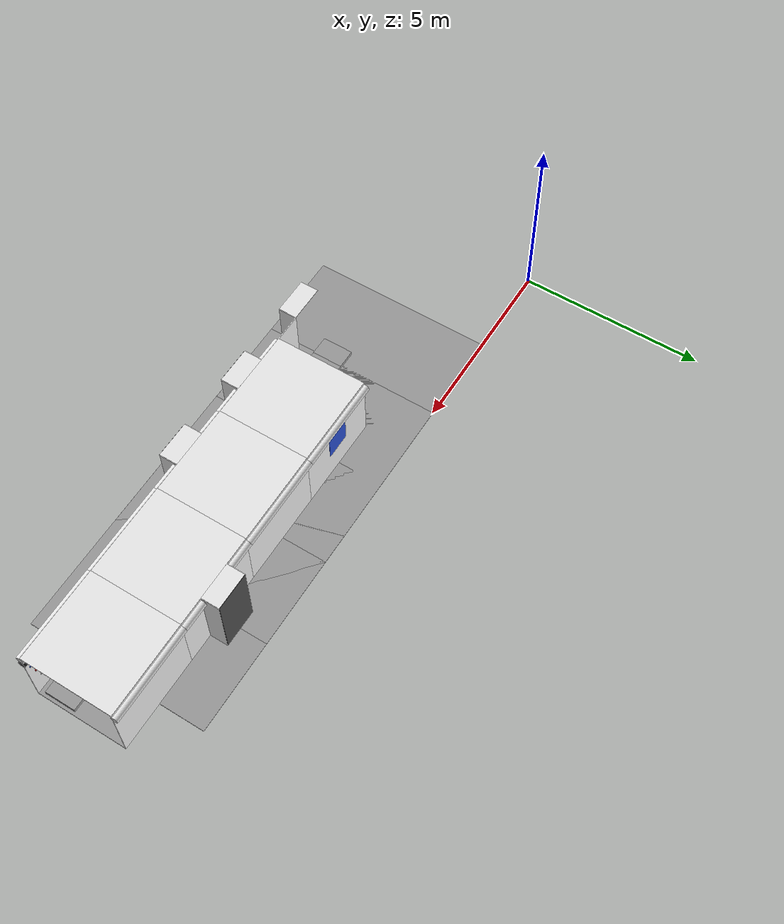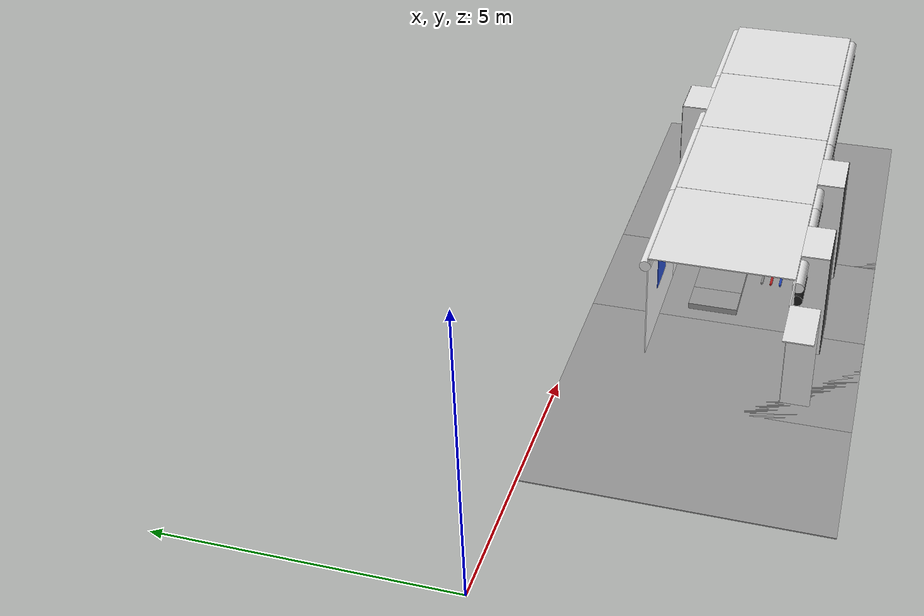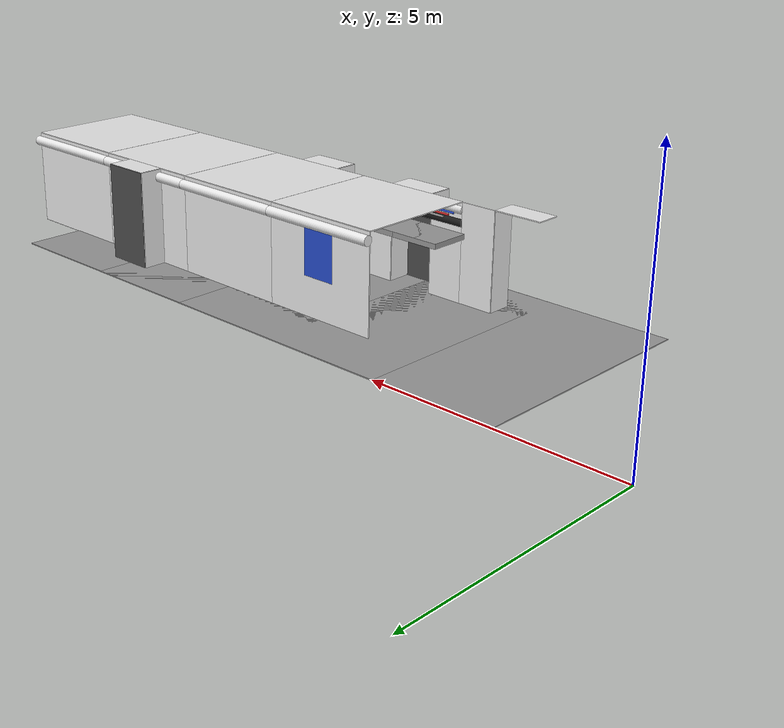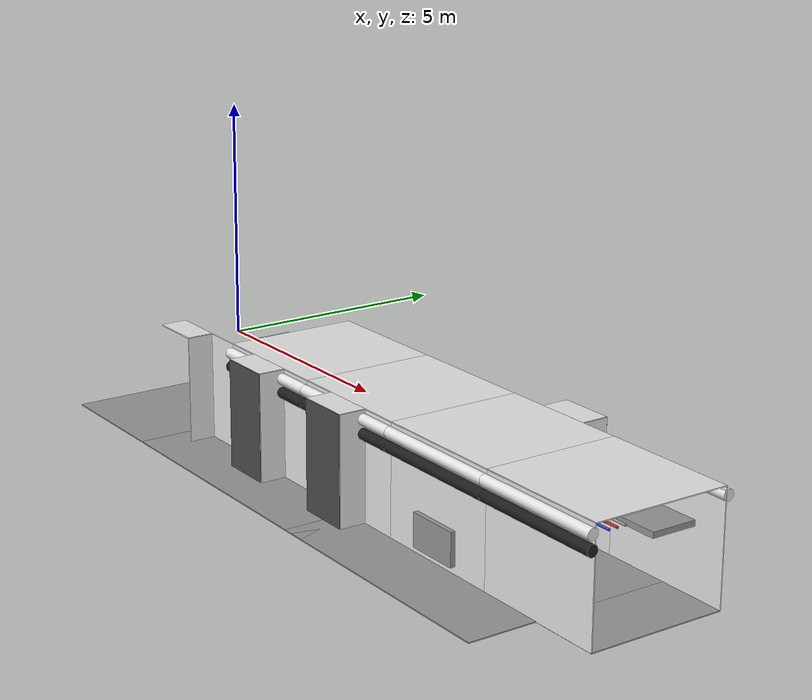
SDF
<sdf version="1.6">
 <world name="default">
  <model name="ceiling_1_2_-1_2_1">
   <pose>6.0 -2.5 1.7 0.0 0.0 -1.57</pose>
   <link name="link_1">
    <visual name="visual">
     <geometry><box><size>0.8 1 0.1</size></box></geometry>
     <material>
      <script><uri>file://media/materials/scripts/gazebo.material</uri><name>Gazebo/Grey</name></script>
     </material>
    </visual>
    <collision name="collision"><geometry><box><size>0.8 1 0.1</size></box></geometry></collision>
   </link>
   <static>1</static>
  </model>
  <model name="wall_right_front_left_2_-1_0_1">
   <static>1</static>
   <pose>5.875 -3.75 1.0 0.0 0.0 0.0</pose>
   <link name="link">
    <collision name="collision"><geometry><box><size>0.75 0.02 2.0</size></box></geometry></collision>
    <visual name="visual">
     <material>
      <script><name>Gazebo/White</name><uri>file://media/materials/scripts/gazebo.material</uri></script>
     </material>
     <geometry><box><size>0.75 0.02 2.0</size></box></geometry>
    </visual>
   </link>
  </model>
  <model name="wall_right_inside_left_2_-1_0_1">
   <static>1</static>
   <pose>5.5 -4.0 1.0 0.0 0.0 -1.57</pose>
   <link name="link">
    <collision name="collision"><geometry><box><size>0.5 0.02 2</size></box></geometry></collision>
    <visual name="visual">
     <material>
      <script><name>Gazebo/White</name><uri>file://media/materials/scripts/gazebo.material</uri></script>
     </material>
     <geometry><box><size>0.5 0.02 2</size></box></geometry>
    </visual>
   </link>
  </model>
  <model name="wall_right_inside_top_2_-1_0_1">
   <static>1</static>
   <pose>5.0 -4.0 2.0 1.57 0.0 0.0</pose>
   <link name="link">
    <collision name="collision"><geometry><box><size>1 0.02 0.5</size></box></geometry></collision>
    <visual name="visual">
     <material>
      <script><name>Gazebo/White</name><uri>file://media/materials/scripts/gazebo.material</uri></script>
     </material>
     <geometry><box><size>1 0.02 0.5</size></box></geometry>
    </visual>
   </link>
  </model>
  <model name="wall_bottom_2_-1_0_1">
   <static>1</static>
   <pose>5.0 -2.5 0.0 0.0 0.0 -1.57</pose>
   <link name="link">
    <collision name="collision"><geometry><box><size>5.0 5.0 0.02</size></box></geometry></collision>
    <visual name="visual">
     <material>
      <script><name>Gazebo/Grey</name><uri>file://media/materials/scripts/gazebo.material</uri></script>
     </material>
     <geometry><box><size>5.0 5.0 0.02</size></box></geometry>
    </visual>
   </link>
  </model>
  <model name="wall_left_3_-1_0_1">
   <static>1</static>
   <pose>7.5 -1.25 1.0 0.0 0.0 0.0</pose>
   <link name="link">
    <collision name="collision"><geometry><box><size>2.5 0.02 2.0</size></box></geometry></collision>
    <visual name="visual">
     <material>
      <script><name>Gazebo/White</name><uri>file://media/materials/scripts/gazebo.material</uri></script>
     </material>
     <geometry><box><size>2.5 0.02 2.0</size></box></geometry>
    </visual>
   </link>
  </model>
  <model name="wall_top_3_-1_0_1">
   <static>1</static>
   <pose>7.5 -2.5 2.0 1.57 0.0 -1.57</pose>
   <link name="link">
    <collision name="collision"><geometry><box><size>2.5 0.02 2.5</size></box></geometry></collision>
    <visual name="visual">
     <material>
      <script><name>Gazebo/White</name><uri>file://media/materials/scripts/gazebo.material</uri></script>
     </material>
     <geometry><box><size>2.5 0.02 2.5</size></box></geometry>
    </visual>
   </link>
  </model>
  <model name="ceiling_1_3_-1_0_1">
   <pose>7.5 -2.5 1.7 0.0 0.0 -1.57</pose>
   <link name="link_1">
    <visual name="visual">
     <geometry><box><size>0.8 1 0.1</size></box></geometry>
     <material>
      <script><uri>file://media/materials/scripts/gazebo.material</uri><name>Gazebo/Grey</name></script>
     </material>
    </visual>
    <collision name="collision"><geometry><box><size>0.8 1 0.1</size></box></geometry></collision>
   </link>
   <static>1</static>
  </model>
  <model name="ceiling_1_3_-1_1_1">
   <pose>6.5 -2.5 1.7 0.0 0.0 -1.57</pose>
   <link name="link_1">
    <visual name="visual">
     <geometry><box><size>0.8 1 0.1</size></box></geometry>
     <material>
      <script><uri>file://media/materials/scripts/gazebo.material</uri><name>Gazebo/Grey</name></script>
     </material>
    </visual>
    <collision name="collision"><geometry><box><size>0.8 1 0.1</size></box></geometry></collision>
   </link>
   <static>1</static>
  </model>
  <model name="ceiling_1_3_-1_2_1">
   <pose>8.5 -2.5 1.7 0.0 0.0 -1.57</pose>
   <link name="link_1">
    <visual name="visual">
     <geometry><box><size>0.8 1 0.1</size></box></geometry>
     <material>
      <script><uri>file://media/materials/scripts/gazebo.material</uri><name>Gazebo/Grey</name></script>
     </material>
    </visual>
    <collision name="collision"><geometry><box><size>0.8 1 0.1</size></box></geometry></collision>
   </link>
   <static>1</static>
  </model>
  <model name="white_pipe_left_3_-1_0_1">
   <static>1</static>
   <pose>7.5 -2.5 1.84 0.0 0.0 -1.57</pose>
   <link name="link_0">
    <visual name="visual">
     <pose>-1.3 0 0 1.57 0 0</pose>
     <geometry><cylinder><radius>0.1</radius><length>2.5</length></cylinder></geometry>
     <material>
      <script><uri>file://media/materials/scripts/gazebo.material</uri><name>Gazebo/White</name></script>
     </material>
    </visual>
    <collision name="collision">
     <pose>-1.3 0 0 1.57 0 0</pose>
     <geometry><cylinder><radius>0.1</radius><length>2.5</length></cylinder></geometry>
    </collision>
   </link>
  </model>
  <model name="white_pipe_right_3_-1_0_1">
   <static>1</static>
   <pose>7.5 -2.5 1.84 0.0 0.0 -1.57</pose>
   <link name="link_0">
    <visual name="visual">
     <pose>1.3 0 0 1.57 0 0</pose>
     <geometry><cylinder><radius>0.1</radius><length>2.5</length></cylinder></geometry>
     <material>
      <script><uri>file://media/materials/scripts/gazebo.material</uri><name>Gazebo/White</name></script>
     </material>
    </visual>
    <collision name="collision">
     <pose>1.3 0 0 1.57 0 0</pose>
     <geometry><cylinder><radius>0.1</radius><length>2.5</length></cylinder></geometry>
    </collision>
   </link>
  </model>
  <model name="black_pipe_right_3_-1_0_1">
   <static>1</static>
   <pose>7.5 -2.5 1.84 0.0 0.0 -1.57</pose>
   <link name="link_0">
    <visual name="visual">
     <pose>1.3 0 -0.25 1.57 0 0</pose>
     <geometry><cylinder><radius>0.1</radius><length>2.5</length></cylinder></geometry>
     <material>
      <script><uri>file://media/materials/scripts/gazebo.material</uri><name>Gazebo/Black</name></script>
     </material>
    </visual>
    <collision name="collision">
     <pose>1.3 0 -0.25 1.57 0 0</pose>
     <geometry><cylinder><radius>0.1</radius><length>2.5</length></cylinder></geometry>
    </collision>
   </link>
  </model>
  <model name="grey_pipe_right_3_-1_0_1">
   <static>1</static>
   <pose>7.5 -2.5 1.84 0.0 0.0 -1.57</pose>
   <link name="link_0">
    <visual name="visual">
     <pose>0.7 0 0 1.57 0 0</pose>
     <geometry><cylinder><radius>0.02</radius><length>2.5</length></cylinder></geometry>
     <material>
      <script><uri>file://media/materials/scripts/gazebo.material</uri><name>Gazebo/Grey</name></script>
     </material>
    </visual>
    <collision name="collision">
     <pose>0.7 0 0 1.57 0 0</pose>
     <geometry><cylinder><radius>0.02</radius><length>2.5</length></cylinder></geometry>
    </collision>
   </link>
  </model>
  <model name="red_pipe_right_3_-1_0_1">
   <static>1</static>
   <pose>7.5 -2.5 1.84 0.0 0.0 -1.57</pose>
   <link name="link_0">
    <visual name="visual">
     <pose>0.85 0 0 1.57 0 0</pose>
     <geometry><cylinder><radius>0.02</radius><length>2.5</length></cylinder></geometry>
     <material>
      <script><uri>file://media/materials/scripts/gazebo.material</uri><name>Gazebo/Red</name></script>
     </material>
    </visual>
    <collision name="collision">
     <pose>0.85 0 0 1.57 0 0</pose>
     <geometry><cylinder><radius>0.02</radius><length>2.5</length></cylinder></geometry>
    </collision>
   </link>
  </model>
  <model name="blue_pipe_right_3_-1_0_1">
   <static>1</static>
   <pose>7.5 -2.5 1.84 0.0 0.0 -1.57</pose>
   <link name="link_0">
    <visual name="visual">
     <pose>1 0 0 1.57 0 0</pose>
     <geometry><cylinder><radius>0.02</radius><length>2.5</length></cylinder></geometry>
     <material>
      <script><uri>file://media/materials/scripts/gazebo.material</uri><name>Gazebo/Blue</name></script>
     </material>
    </visual>
    <collision name="collision">
     <pose>1 0 0 1.57 0 0</pose>
     <geometry><cylinder><radius>0.02</radius><length>2.5</length></cylinder></geometry>
    </collision>
   </link>
  </model>
  <model name="panel_3_-1_0_1">
   <static>1</static>
   <pose>7.5 -1.25 1.3 0.0 0.0 -1.57</pose>
   <link name="link">
    <collision name="collision"><geometry><box><size>0.04 0.7 1</size></box></geometry></collision>
    <visual name="visual">
     <material>
      <script><name>Gazebo/Blue</name><uri>file://media/materials/scripts/gazebo.material</uri></script>
     </material>
     <geometry><box><size>0.04 0.7 1</size></box></geometry>
    </visual>
   </link>
  </model>
  <model name="wall_right_front_left_3_-1_0_1">
   <static>1</static>
   <pose>8.375 -3.75 1.0 0.0 0.0 0.0</pose>
   <link name="link">
    <collision name="collision"><geometry><box><size>0.75 0.02 2.0</size></box></geometry></collision>
    <visual name="visual">
     <material>
      <script><name>Gazebo/White</name><uri>file://media/materials/scripts/gazebo.material</uri></script>
     </material>
     <geometry><box><size>0.75 0.02 2.0</size></box></geometry>
    </visual>
   </link>
  </model>
  <model name="wall_right_front_right_3_-1_0_1">
   <static>1</static>
   <pose>6.625 -3.75 1.0 0.0 0.0 0.0</pose>
   <link name="link">
    <collision name="collision"><geometry><box><size>0.75 0.02 2.0</size></box></geometry></collision>
    <visual name="visual">
     <material>
      <script><name>Gazebo/White</name><uri>file://media/materials/scripts/gazebo.material</uri></script>
     </material>
     <geometry><box><size>0.75 0.02 2.0</size></box></geometry>
    </visual>
   </link>
  </model>
  <model name="wall_right_front_up_3_-1_0_1">
   <static>1</static>
   <pose>7.5 -3.75 2.0 0.0 0.0 0.0</pose>
   <link name="link">
    <collision name="collision"><geometry><box><size>1.0 0.02 0.001</size></box></geometry></collision>
    <visual name="visual">
     <material>
      <script><name>Gazebo/White</name><uri>file://media/materials/scripts/gazebo.material</uri></script>
     </material>
     <geometry><box><size>1.0 0.02 0.001</size></box></geometry>
    </visual>
   </link>
  </model>
  <model name="wall_right_inside_back_3_-1_0_1">
   <static>1</static>
   <pose>7.5 -4.25 1.0 0.0 0.0 0.0</pose>
   <link name="link">
    <collision name="collision"><geometry><box><size>1 0.02 2</size></box></geometry></collision>
    <visual name="visual">
     <material>
      <script><name>Gazebo/DarkGrey</name><uri>file://media/materials/scripts/gazebo.material</uri></script>
     </material>
     <geometry><box><size>1 0.02 2</size></box></geometry>
    </visual>
   </link>
  </model>
  <model name="wall_right_inside_left_3_-1_0_1">
   <static>1</static>
   <pose>8.0 -4.0 1.0 0.0 0.0 -1.57</pose>
   <link name="link">
    <collision name="collision"><geometry><box><size>0.5 0.02 2</size></box></geometry></collision>
    <visual name="visual">
     <material>
      <script><name>Gazebo/White</name><uri>file://media/materials/scripts/gazebo.material</uri></script>
     </material>
     <geometry><box><size>0.5 0.02 2</size></box></geometry>
    </visual>
   </link>
  </model>
  <model name="wall_right_inside_right_3_-1_0_1">
   <static>1</static>
   <pose>7.0 -4.0 1.0 0.0 0.0 -1.57</pose>
   <link name="link">
    <collision name="collision"><geometry><box><size>0.5 0.02 2</size></box></geometry></collision>
    <visual name="visual">
     <material>
      <script><name>Gazebo/White</name><uri>file://media/materials/scripts/gazebo.material</uri></script>
     </material>
     <geometry><box><size>0.5 0.02 2</size></box></geometry>
    </visual>
   </link>
  </model>
  <model name="wall_right_inside_top_3_-1_0_1">
   <static>1</static>
   <pose>7.5 -4.0 2.0 1.57 0.0 0.0</pose>
   <link name="link">
    <collision name="collision"><geometry><box><size>1 0.02 0.5</size></box></geometry></collision>
    <visual name="visual">
     <material>
      <script><name>Gazebo/White</name><uri>file://media/materials/scripts/gazebo.material</uri></script>
     </material>
     <geometry><box><size>1 0.02 0.5</size></box></geometry>
    </visual>
   </link>
  </model>
  <model name="wall_bottom_3_-1_0_1">
   <static>1</static>
   <pose>7.5 -2.5 0.0 0.0 0.0 -1.57</pose>
   <link name="link">
    <collision name="collision"><geometry><box><size>5.0 5.0 0.02</size></box></geometry></collision>
    <visual name="visual">
     <material>
      <script><name>Gazebo/Grey</name><uri>file://media/materials/scripts/gazebo.material</uri></script>
     </material>
     <geometry><box><size>5.0 5.0 0.02</size></box></geometry>
    </visual>
   </link>
  </model>
  <model name="wall_left_4_-1_0_1">
   <static>1</static>
   <pose>10.0 -1.25 1.0 0.0 0.0 0.0</pose>
   <link name="link">
    <collision name="collision"><geometry><box><size>2.5 0.02 2.0</size></box></geometry></collision>
    <visual name="visual">
     <material>
      <script><name>Gazebo/White</name><uri>file://media/materials/scripts/gazebo.material</uri></script>
     </material>
     <geometry><box><size>2.5 0.02 2.0</size></box></geometry>
    </visual>
   </link>
  </model>
  <model name="wall_top_4_-1_0_1">
   <static>1</static>
   <pose>10.0 -2.5 2.0 1.57 0.0 -1.57</pose>
   <link name="link">
    <collision name="collision"><geometry><box><size>2.5 0.02 2.5</size></box></geometry></collision>
    <visual name="visual">
     <material>
      <script><name>Gazebo/White</name><uri>file://media/materials/scripts/gazebo.material</uri></script>
     </material>
     <geometry><box><size>2.5 0.02 2.5</size></box></geometry>
    </visual>
   </link>
  </model>
  <model name="ceiling_1_4_-1_0_1">
   <pose>10.0 -2.5 1.7 0.0 0.0 -1.57</pose>
   <link name="link_1">
    <visual name="visual">
     <geometry><box><size>0.8 1 0.1</size></box></geometry>
     <material>
      <script><uri>file://media/materials/scripts/gazebo.material</uri><name>Gazebo/Grey</name></script>
     </material>
    </visual>
    <collision name="collision"><geometry><box><size>0.8 1 0.1</size></box></geometry></collision>
   </link>
   <static>1</static>
  </model>
  <model name="ceiling_1_4_-1_1_1">
   <pose>9.0 -2.5 1.7 0.0 0.0 -1.57</pose>
   <link name="link_1">
    <visual name="visual">
     <geometry><box><size>0.8 1 0.1</size></box></geometry>
     <material>
      <script><uri>file://media/materials/scripts/gazebo.material</uri><name>Gazebo/Grey</name></script>
     </material>
    </visual>
    <collision name="collision"><geometry><box><size>0.8 1 0.1</size></box></geometry></collision>
   </link>
   <static>1</static>
  </model>
  <model name="ceiling_1_4_-1_2_1">
   <pose>11.0 -2.5 1.7 0.0 0.0 -1.57</pose>
   <link name="link_1">
    <visual name="visual">
     <geometry><box><size>0.8 1 0.1</size></box></geometry>
     <material>
      <script><uri>file://media/materials/scripts/gazebo.material</uri><name>Gazebo/Grey</name></script>
     </material>
    </visual>
    <collision name="collision"><geometry><box><size>0.8 1 0.1</size></box></geometry></collision>
   </link>
   <static>1</static>
  </model>
  <model name="white_pipe_left_4_-1_0_1">
   <static>1</static>
   <pose>10.0 -2.5 1.84 0.0 0.0 -1.57</pose>
   <link name="link_0">
    <visual name="visual">
     <pose>-1.3 0 0 1.57 0 0</pose>
     <geometry><cylinder><radius>0.1</radius><length>2.5</length></cylinder></geometry>
     <material>
      <script><uri>file://media/materials/scripts/gazebo.material</uri><name>Gazebo/White</name></script>
     </material>
    </visual>
    <collision name="collision">
     <pose>-1.3 0 0 1.57 0 0</pose>
     <geometry><cylinder><radius>0.1</radius><length>2.5</length></cylinder></geometry>
    </collision>
   </link>
  </model>
  <model name="white_pipe_right_4_-1_0_1">
   <static>1</static>
   <pose>10.0 -2.5 1.84 0.0 0.0 -1.57</pose>
   <link name="link_0">
    <visual name="visual">
     <pose>1.3 0 0 1.57 0 0</pose>
     <geometry><cylinder><radius>0.1</radius><length>2.5</length></cylinder></geometry>
     <material>
      <script><uri>file://media/materials/scripts/gazebo.material</uri><name>Gazebo/White</name></script>
     </material>
    </visual>
    <collision name="collision">
     <pose>1.3 0 0 1.57 0 0</pose>
     <geometry><cylinder><radius>0.1</radius><length>2.5</length></cylinder></geometry>
    </collision>
   </link>
  </model>
  <model name="black_pipe_right_4_-1_0_1">
   <static>1</static>
   <pose>10.0 -2.5 1.84 0.0 0.0 -1.57</pose>
   <link name="link_0">
    <visual name="visual">
     <pose>1.3 0 -0.25 1.57 0 0</pose>
     <geometry><cylinder><radius>0.1</radius><length>2.5</length></cylinder></geometry>
     <material>
      <script><uri>file://media/materials/scripts/gazebo.material</uri><name>Gazebo/Black</name></script>
     </material>
    </visual>
    <collision name="collision">
     <pose>1.3 0 -0.25 1.57 0 0</pose>
     <geometry><cylinder><radius>0.1</radius><length>2.5</length></cylinder></geometry>
    </collision>
   </link>
  </model>
  <model name="grey_pipe_right_4_-1_0_1">
   <static>1</static>
   <pose>10.0 -2.5 1.84 0.0 0.0 -1.57</pose>
   <link name="link_0">
    <visual name="visual">
     <pose>0.7 0 0 1.57 0 0</pose>
     <geometry><cylinder><radius>0.02</radius><length>2.5</length></cylinder></geometry>
     <material>
      <script><uri>file://media/materials/scripts/gazebo.material</uri><name>Gazebo/Grey</name></script>
     </material>
    </visual>
    <collision name="collision">
     <pose>0.7 0 0 1.57 0 0</pose>
     <geometry><cylinder><radius>0.02</radius><length>2.5</length></cylinder></geometry>
    </collision>
   </link>
  </model>
  <model name="red_pipe_right_4_-1_0_1">
   <static>1</static>
   <pose>10.0 -2.5 1.84 0.0 0.0 -1.57</pose>
   <link name="link_0">
    <visual name="visual">
     <pose>0.85 0 0 1.57 0 0</pose>
     <geometry><cylinder><radius>0.02</radius><length>2.5</length></cylinder></geometry>
     <material>
      <script><uri>file://media/materials/scripts/gazebo.material</uri><name>Gazebo/Red</name></script>
     </material>
    </visual>
    <collision name="collision">
     <pose>0.85 0 0 1.57 0 0</pose>
     <geometry><cylinder><radius>0.02</radius><length>2.5</length></cylinder></geometry>
    </collision>
   </link>
  </model>
  <model name="blue_pipe_right_4_-1_0_1">
   <static>1</static>
   <pose>10.0 -2.5 1.84 0.0 0.0 -1.57</pose>
   <link name="link_0">
    <visual name="visual">
     <pose>1 0 0 1.57 0 0</pose>
     <geometry><cylinder><radius>0.02</radius><length>2.5</length></cylinder></geometry>
     <material>
      <script><uri>file://media/materials/scripts/gazebo.material</uri><name>Gazebo/Blue</name></script>
     </material>
    </visual>
    <collision name="collision">
     <pose>1 0 0 1.57 0 0</pose>
     <geometry><cylinder><radius>0.02</radius><length>2.5</length></cylinder></geometry>
    </collision>
   </link>
  </model>
  <model name="wall_right_front_left_4_-1_0_1">
   <static>1</static>
   <pose>10.875 -3.75 1.0 0.0 0.0 0.0</pose>
   <link name="link">
    <collision name="collision"><geometry><box><size>0.75 0.02 2.0</size></box></geometry></collision>
    <visual name="visual">
     <material>
      <script><name>Gazebo/White</name><uri>file://media/materials/scripts/gazebo.material</uri></script>
     </material>
     <geometry><box><size>0.75 0.02 2.0</size></box></geometry>
    </visual>
   </link>
  </model>
  <model name="wall_right_front_right_4_-1_0_1">
   <static>1</static>
   <pose>9.125 -3.75 1.0 0.0 0.0 0.0</pose>
   <link name="link">
    <collision name="collision"><geometry><box><size>0.75 0.02 2.0</size></box></geometry></collision>
    <visual name="visual">
     <material>
      <script><name>Gazebo/White</name><uri>file://media/materials/scripts/gazebo.material</uri></script>
     </material>
     <geometry><box><size>0.75 0.02 2.0</size></box></geometry>
    </visual>
   </link>
  </model>
  <model name="wall_right_front_up_4_-1_0_1">
   <static>1</static>
   <pose>10.0 -3.75 2.0 0.0 0.0 0.0</pose>
   <link name="link">
    <collision name="collision"><geometry><box><size>1.0 0.02 0.001</size></box></geometry></collision>
    <visual name="visual">
     <material>
      <script><name>Gazebo/White</name><uri>file://media/materials/scripts/gazebo.material</uri></script>
     </material>
     <geometry><box><size>1.0 0.02 0.001</size></box></geometry>
    </visual>
   </link>
  </model>
  <model name="wall_right_inside_back_4_-1_0_1">
   <static>1</static>
   <pose>10.0 -4.25 1.0 0.0 0.0 0.0</pose>
   <link name="link">
    <collision name="collision"><geometry><box><size>1 0.02 2</size></box></geometry></collision>
    <visual name="visual">
     <material>
      <script><name>Gazebo/DarkGrey</name><uri>file://media/materials/scripts/gazebo.material</uri></script>
     </material>
     <geometry><box><size>1 0.02 2</size></box></geometry>
    </visual>
   </link>
  </model>
  <model name="wall_right_inside_left_4_-1_0_1">
   <static>1</static>
   <pose>10.5 -4.0 1.0 0.0 0.0 -1.57</pose>
   <link name="link">
    <collision name="collision"><geometry><box><size>0.5 0.02 2</size></box></geometry></collision>
    <visual name="visual">
     <material>
      <script><name>Gazebo/White</name><uri>file://media/materials/scripts/gazebo.material</uri></script>
     </material>
     <geometry><box><size>0.5 0.02 2</size></box></geometry>
    </visual>
   </link>
  </model>
  <model name="wall_right_inside_right_4_-1_0_1">
   <static>1</static>
   <pose>9.5 -4.0 1.0 0.0 0.0 -1.57</pose>
   <link name="link">
    <collision name="collision"><geometry><box><size>0.5 0.02 2</size></box></geometry></collision>
    <visual name="visual">
     <material>
      <script><name>Gazebo/White</name><uri>file://media/materials/scripts/gazebo.material</uri></script>
     </material>
     <geometry><box><size>0.5 0.02 2</size></box></geometry>
    </visual>
   </link>
  </model>
  <model name="wall_right_inside_top_4_-1_0_1">
   <static>1</static>
   <pose>10.0 -4.0 2.0 1.57 0.0 0.0</pose>
   <link name="link">
    <collision name="collision"><geometry><box><size>1 0.02 0.5</size></box></geometry></collision>
    <visual name="visual">
     <material>
      <script><name>Gazebo/White</name><uri>file://media/materials/scripts/gazebo.material</uri></script>
     </material>
     <geometry><box><size>1 0.02 0.5</size></box></geometry>
    </visual>
   </link>
  </model>
  <model name="wall_bottom_4_-1_0_1">
   <static>1</static>
   <pose>10.0 -2.5 0.0 0.0 0.0 -1.57</pose>
   <link name="link">
    <collision name="collision"><geometry><box><size>5.0 5.0 0.02</size></box></geometry></collision>
    <visual name="visual">
     <material>
      <script><name>Gazebo/Grey</name><uri>file://media/materials/scripts/gazebo.material</uri></script>
     </material>
     <geometry><box><size>5.0 5.0 0.02</size></box></geometry>
    </visual>
   </link>
  </model>
  <model name="wall_right_5_-1_0_1">
   <static>1</static>
   <pose>12.5 -3.75 1.0 0.0 0.0 0.0</pose>
   <link name="link">
    <collision name="collision"><geometry><box><size>2.5 0.02 2.0</size></box></geometry></collision>
    <visual name="visual">
     <material>
      <script><name>Gazebo/White</name><uri>file://media/materials/scripts/gazebo.material</uri></script>
     </material>
     <geometry><box><size>2.5 0.02 2.0</size></box></geometry>
    </visual>
   </link>
  </model>
  <model name="wall_top_5_-1_0_1">
   <static>1</static>
   <pose>12.5 -2.5 2.0 1.57 0.0 -1.57</pose>
   <link name="link">
    <collision name="collision"><geometry><box><size>2.5 0.02 2.5</size></box></geometry></collision>
    <visual name="visual">
     <material>
      <script><name>Gazebo/White</name><uri>file://media/materials/scripts/gazebo.material</uri></script>
     </material>
     <geometry><box><size>2.5 0.02 2.5</size></box></geometry>
    </visual>
   </link>
  </model>
  <model name="ceiling_1_5_-1_0_1">
   <pose>12.5 -2.5 1.7 0.0 0.0 -1.57</pose>
   <link name="link_1">
    <visual name="visual">
     <geometry><box><size>0.8 1 0.1</size></box></geometry>
     <material>
      <script><uri>file://media/materials/scripts/gazebo.material</uri><name>Gazebo/Grey</name></script>
     </material>
    </visual>
    <collision name="collision"><geometry><box><size>0.8 1 0.1</size></box></geometry></collision>
   </link>
   <static>1</static>
  </model>
  <model name="ceiling_1_5_-1_1_1">
   <pose>11.5 -2.5 1.7 0.0 0.0 -1.57</pose>
   <link name="link_1">
    <visual name="visual">
     <geometry><box><size>0.8 1 0.1</size></box></geometry>
     <material>
      <script><uri>file://media/materials/scripts/gazebo.material</uri><name>Gazebo/Grey</name></script>
     </material>
    </visual>
    <collision name="collision"><geometry><box><size>0.8 1 0.1</size></box></geometry></collision>
   </link>
   <static>1</static>
  </model>
  <model name="ceiling_1_5_-1_2_1">
   <pose>13.5 -2.5 1.7 0.0 0.0 -1.57</pose>
   <link name="link_1">
    <visual name="visual">
     <geometry><box><size>0.8 1 0.1</size></box></geometry>
     <material>
      <script><uri>file://media/materials/scripts/gazebo.material</uri><name>Gazebo/Grey</name></script>
     </material>
    </visual>
    <collision name="collision"><geometry><box><size>0.8 1 0.1</size></box></geometry></collision>
   </link>
   <static>1</static>
  </model>
  <model name="white_pipe_left_5_-1_0_1">
   <static>1</static>
   <pose>12.5 -2.5 1.84 0.0 0.0 -1.57</pose>
   <link name="link_0">
    <visual name="visual">
     <pose>-1.3 0 0 1.57 0 0</pose>
     <geometry><cylinder><radius>0.1</radius><length>2.5</length></cylinder></geometry>
     <material>
      <script><uri>file://media/materials/scripts/gazebo.material</uri><name>Gazebo/White</name></script>
     </material>
    </visual>
    <collision name="collision">
     <pose>-1.3 0 0 1.57 0 0</pose>
     <geometry><cylinder><radius>0.1</radius><length>2.5</length></cylinder></geometry>
    </collision>
   </link>
  </model>
  <model name="white_pipe_right_5_-1_0_1">
   <static>1</static>
   <pose>12.5 -2.5 1.84 0.0 0.0 -1.57</pose>
   <link name="link_0">
    <visual name="visual">
     <pose>1.3 0 0 1.57 0 0</pose>
     <geometry><cylinder><radius>0.1</radius><length>2.5</length></cylinder></geometry>
     <material>
      <script><uri>file://media/materials/scripts/gazebo.material</uri><name>Gazebo/White</name></script>
     </material>
    </visual>
    <collision name="collision">
     <pose>1.3 0 0 1.57 0 0</pose>
     <geometry><cylinder><radius>0.1</radius><length>2.5</length></cylinder></geometry>
    </collision>
   </link>
  </model>
  <model name="black_pipe_right_5_-1_0_1">
   <static>1</static>
   <pose>12.5 -2.5 1.84 0.0 0.0 -1.57</pose>
   <link name="link_0">
    <visual name="visual">
     <pose>1.3 0 -0.25 1.57 0 0</pose>
     <geometry><cylinder><radius>0.1</radius><length>2.5</length></cylinder></geometry>
     <material>
      <script><uri>file://media/materials/scripts/gazebo.material</uri><name>Gazebo/Black</name></script>
     </material>
    </visual>
    <collision name="collision">
     <pose>1.3 0 -0.25 1.57 0 0</pose>
     <geometry><cylinder><radius>0.1</radius><length>2.5</length></cylinder></geometry>
    </collision>
   </link>
  </model>
  <model name="grey_pipe_right_5_-1_0_1">
   <static>1</static>
   <pose>12.5 -2.5 1.84 0.0 0.0 -1.57</pose>
   <link name="link_0">
    <visual name="visual">
     <pose>0.7 0 0 1.57 0 0</pose>
     <geometry><cylinder><radius>0.02</radius><length>2.5</length></cylinder></geometry>
     <material>
      <script><uri>file://media/materials/scripts/gazebo.material</uri><name>Gazebo/Grey</name></script>
     </material>
    </visual>
    <collision name="collision">
     <pose>0.7 0 0 1.57 0 0</pose>
     <geometry><cylinder><radius>0.02</radius><length>2.5</length></cylinder></geometry>
    </collision>
   </link>
  </model>
  <model name="red_pipe_right_5_-1_0_1">
   <static>1</static>
   <pose>12.5 -2.5 1.84 0.0 0.0 -1.57</pose>
   <link name="link_0">
    <visual name="visual">
     <pose>0.85 0 0 1.57 0 0</pose>
     <geometry><cylinder><radius>0.02</radius><length>2.5</length></cylinder></geometry>
     <material>
      <script><uri>file://media/materials/scripts/gazebo.material</uri><name>Gazebo/Red</name></script>
     </material>
    </visual>
    <collision name="collision">
     <pose>0.85 0 0 1.57 0 0</pose>
     <geometry><cylinder><radius>0.02</radius><length>2.5</length></cylinder></geometry>
    </collision>
   </link>
  </model>
  <model name="blue_pipe_right_5_-1_0_1">
   <static>1</static>
   <pose>12.5 -2.5 1.84 0.0 0.0 -1.57</pose>
   <link name="link_0">
    <visual name="visual">
     <pose>1 0 0 1.57 0 0</pose>
     <geometry><cylinder><radius>0.02</radius><length>2.5</length></cylinder></geometry>
     <material>
      <script><uri>file://media/materials/scripts/gazebo.material</uri><name>Gazebo/Blue</name></script>
     </material>
    </visual>
    <collision name="collision">
     <pose>1 0 0 1.57 0 0</pose>
     <geometry><cylinder><radius>0.02</radius><length>2.5</length></cylinder></geometry>
    </collision>
   </link>
  </model>
  <model name="wall_bottom_5_-1_0_1">
   <static>1</static>
   <pose>12.5 -2.5 0.0 0.0 0.0 -1.57</pose>
   <link name="link">
    <collision name="collision"><geometry><box><size>5.0 5.0 0.02</size></box></geometry></collision>
    <visual name="visual">
     <material>
      <script><name>Gazebo/Grey</name><uri>file://media/materials/scripts/gazebo.material</uri></script>
     </material>
     <geometry><box><size>5.0 5.0 0.02</size></box></geometry>
    </visual>
   </link>
  </model>
  <model name="wall_left_front_left_5_-1_0_1">
   <static>1</static>
   <pose>13.375 -1.25 1.0 0.0 0.0 0.0</pose>
   <link name="link">
    <collision name="collision"><geometry><box><size>0.75 0.02 2.0</size></box></geometry></collision>
    <visual name="visual">
     <material>
      <script><name>Gazebo/White</name><uri>file://media/materials/scripts/gazebo.material</uri></script>
     </material>
     <geometry><box><size>0.75 0.02 2.0</size></box></geometry>
    </visual>
   </link>
  </model>
  <model name="wall_left_front_right_5_-1_0_1">
   <static>1</static>
   <pose>11.625 -1.25 1.0 0.0 0.0 0.0</pose>
   <link name="link">
    <collision name="collision"><geometry><box><size>0.75 0.02 2.0</size></box></geometry></collision>
    <visual name="visual">
     <material>
      <script><name>Gazebo/White</name><uri>file://media/materials/scripts/gazebo.material</uri></script>
     </material>
     <geometry><box><size>0.75 0.02 2.0</size></box></geometry>
    </visual>
   </link>
  </model>
  <model name="wall_left_front_up_5_-1_0_1">
   <static>1</static>
   <pose>12.5 -1.25 2.0 0.0 0.0 0.0</pose>
   <link name="link">
    <collision name="collision"><geometry><box><size>1.0 0.02 0.001</size></box></geometry></collision>
    <visual name="visual">
     <material>
      <script><name>Gazebo/White</name><uri>file://media/materials/scripts/gazebo.material</uri></script>
     </material>
     <geometry><box><size>1.0 0.02 0.001</size></box></geometry>
    </visual>
   </link>
  </model>
  <model name="wall_left_inside_back_5_-1_0_1">
   <static>1</static>
   <pose>12.5 -0.75 1.0 0.0 0.0 0.0</pose>
   <link name="link">
    <collision name="collision"><geometry><box><size>1 0.02 2</size></box></geometry></collision>
    <visual name="visual">
     <material>
      <script><name>Gazebo/DarkGrey</name><uri>file://media/materials/scripts/gazebo.material</uri></script>
     </material>
     <geometry><box><size>1 0.02 2</size></box></geometry>
    </visual>
   </link>
  </model>
  <model name="wall_left_inside_left_5_-1_0_1">
   <static>1</static>
   <pose>13.0 -1.0 1.0 0.0 0.0 -1.57</pose>
   <link name="link">
    <collision name="collision"><geometry><box><size>0.5 0.02 2</size></box></geometry></collision>
    <visual name="visual">
     <material>
      <script><name>Gazebo/White</name><uri>file://media/materials/scripts/gazebo.material</uri></script>
     </material>
     <geometry><box><size>0.5 0.02 2</size></box></geometry>
    </visual>
   </link>
  </model>
  <model name="wall_left_inside_right_5_-1_0_1">
   <static>1</static>
   <pose>12.0 -1.0 1.0 0.0 0.0 -1.57</pose>
   <link name="link">
    <collision name="collision"><geometry><box><size>0.5 0.02 2</size></box></geometry></collision>
    <visual name="visual">
     <material>
      <script><name>Gazebo/White</name><uri>file://media/materials/scripts/gazebo.material</uri></script>
     </material>
     <geometry><box><size>0.5 0.02 2</size></box></geometry>
    </visual>
   </link>
  </model>
  <model name="wall_left_inside_top_5_-1_0_1">
   <static>1</static>
   <pose>12.5 -1.0 2.0 1.57 0.0 0.0</pose>
   <link name="link">
    <collision name="collision"><geometry><box><size>1 0.02 0.5</size></box></geometry></collision>
    <visual name="visual">
     <material>
      <script><name>Gazebo/White</name><uri>file://media/materials/scripts/gazebo.material</uri></script>
     </material>
     <geometry><box><size>1 0.02 0.5</size></box></geometry>
    </visual>
   </link>
  </model>
  <model name="panel_5_-1_0_1">
   <static>1</static>
   <pose>12.5 -3.75 0.44 0.0 0.0 -1.57</pose>
   <link name="link">
    <collision name="collision"><geometry><box><size>0.2 1 0.6</size></box></geometry></collision>
    <visual name="visual">
     <material>
      <script><name>Gazebo/Grey</name><uri>file://media/materials/scripts/gazebo.material</uri></script>
     </material>
     <geometry><box><size>0.2 1 0.6</size></box></geometry>
    </visual>
   </link>
  </model>
  <model name="wall_right_6_-1_0_4">
   <static>1</static>
   <pose>15.0 -3.75 1.0 0.0 0.0 0.0</pose>
   <link name="link">
    <collision name="collision"><geometry><box><size>2.5 0.02 2.0</size></box></geometry></collision>
    <visual name="visual">
     <material>
      <script><name>Gazebo/White</name><uri>file://media/materials/scripts/gazebo.material</uri></script>
     </material>
     <geometry><box><size>2.5 0.02 2.0</size></box></geometry>
    </visual>
   </link>
  </model>
  <model name="wall_left_6_-1_0_4">
   <static>1</static>
   <pose>15.0 -1.25 1.0 0.0 0.0 0.0</pose>
   <link name="link">
    <collision name="collision"><geometry><box><size>2.5 0.02 2.0</size></box></geometry></collision>
    <visual name="visual">
     <material>
      <script><name>Gazebo/White</name><uri>file://media/materials/scripts/gazebo.material</uri></script>
     </material>
     <geometry><box><size>2.5 0.02 2.0</size></box></geometry>
    </visual>
   </link>
  </model>
  <model name="wall_top_6_-1_0_4">
   <static>1</static>
   <pose>15.0 -2.5 2.0 1.57 0.0 -1.57</pose>
   <link name="link">
    <collision name="collision"><geometry><box><size>2.5 0.02 2.5</size></box></geometry></collision>
    <visual name="visual">
     <material>
      <script><name>Gazebo/White</name><uri>file://media/materials/scripts/gazebo.material</uri></script>
     </material>
     <geometry><box><size>2.5 0.02 2.5</size></box></geometry>
    </visual>
   </link>
  </model>
  <model name="ceiling_1_6_-1_0_4">
   <pose>15.0 -2.5 1.7 0.0 0.0 -1.57</pose>
   <link name="link_1">
    <visual name="visual">
     <geometry><box><size>0.8 1 0.1</size></box></geometry>
     <material>
      <script><uri>file://media/materials/scripts/gazebo.material</uri><name>Gazebo/Grey</name></script>
     </material>
    </visual>
    <collision name="collision"><geometry><box><size>0.8 1 0.1</size></box></geometry></collision>
   </link>
   <static>1</static>
  </model>
  <model name="ceiling_1_6_-1_1_4">
   <pose>14.0 -2.5 1.7 0.0 0.0 -1.57</pose>
   <link name="link_1">
    <visual name="visual">
     <geometry><box><size>0.8 1 0.1</size></box></geometry>
     <material>
      <script><uri>file://media/materials/scripts/gazebo.material</uri><name>Gazebo/Grey</name></script>
     </material>
    </visual>
    <collision name="collision"><geometry><box><size>0.8 1 0.1</size></box></geometry></collision>
   </link>
   <static>1</static>
  </model>
  <model name="ceiling_1_6_-1_2_4">
   <pose>16.0 -2.5 1.7 0.0 0.0 -1.57</pose>
   <link name="link_1">
    <visual name="visual">
     <geometry><box><size>0.8 1 0.1</size></box></geometry>
     <material>
      <script><uri>file://media/materials/scripts/gazebo.material</uri><name>Gazebo/Grey</name></script>
     </material>
    </visual>
    <collision name="collision"><geometry><box><size>0.8 1 0.1</size></box></geometry></collision>
   </link>
   <static>1</static>
  </model>
  <model name="white_pipe_left_6_-1_0_4">
   <static>1</static>
   <pose>15.0 -2.5 1.84 0.0 0.0 -1.57</pose>
   <link name="link_0">
    <visual name="visual">
     <pose>-1.3 0 0 1.57 0 0</pose>
     <geometry><cylinder><radius>0.1</radius><length>2.5</length></cylinder></geometry>
     <material>
      <script><uri>file://media/materials/scripts/gazebo.material</uri><name>Gazebo/White</name></script>
     </material>
    </visual>
    <collision name="collision">
     <pose>-1.3 0 0 1.57 0 0</pose>
     <geometry><cylinder><radius>0.1</radius><length>2.5</length></cylinder></geometry>
    </collision>
   </link>
  </model>
  <model name="white_pipe_right_6_-1_0_4">
   <static>1</static>
   <pose>15.0 -2.5 1.84 0.0 0.0 -1.57</pose>
   <link name="link_0">
    <visual name="visual">
     <pose>1.3 0 0 1.57 0 0</pose>
     <geometry><cylinder><radius>0.1</radius><length>2.5</length></cylinder></geometry>
     <material>
      <script><uri>file://media/materials/scripts/gazebo.material</uri><name>Gazebo/White</name></script>
     </material>
    </visual>
    <collision name="collision">
     <pose>1.3 0 0 1.57 0 0</pose>
     <geometry><cylinder><radius>0.1</radius><length>2.5</length></cylinder></geometry>
    </collision>
   </link>
  </model>
  <model name="black_pipe_right_6_-1_0_4">
   <static>1</static>
   <pose>15.0 -2.5 1.84 0.0 0.0 -1.57</pose>
   <link name="link_0">
    <visual name="visual">
     <pose>1.3 0 -0.25 1.57 0 0</pose>
     <geometry><cylinder><radius>0.1</radius><length>2.5</length></cylinder></geometry>
     <material>
      <script><uri>file://media/materials/scripts/gazebo.material</uri><name>Gazebo/Black</name></script>
     </material>
    </visual>
    <collision name="collision">
     <pose>1.3 0 -0.25 1.57 0 0</pose>
     <geometry><cylinder><radius>0.1</radius><length>2.5</length></cylinder></geometry>
    </collision>
   </link>
  </model>
  <model name="grey_pipe_right_6_-1_0_4">
   <static>1</static>
   <pose>15.0 -2.5 1.84 0.0 0.0 -1.57</pose>
   <link name="link_0">
    <visual name="visual">
     <pose>0.7 0 0 1.57 0 0</pose>
     <geometry><cylinder><radius>0.02</radius><length>2.5</length></cylinder></geometry>
     <material>
      <script><uri>file://media/materials/scripts/gazebo.material</uri><name>Gazebo/Grey</name></script>
     </material>
    </visual>
    <collision name="collision">
     <pose>0.7 0 0 1.57 0 0</pose>
     <geometry><cylinder><radius>0.02</radius><length>2.5</length></cylinder></geometry>
    </collision>
   </link>
  </model>
  <model name="red_pipe_right_6_-1_0_4">
   <static>1</static>
   <pose>15.0 -2.5 1.84 0.0 0.0 -1.57</pose>
   <link name="link_0">
    <visual name="visual">
     <pose>0.85 0 0 1.57 0 0</pose>
     <geometry><cylinder><radius>0.02</radius><length>2.5</length></cylinder></geometry>
     <material>
      <script><uri>file://media/materials/scripts/gazebo.material</uri><name>Gazebo/Red</name></script>
     </material>
    </visual>
    <collision name="collision">
     <pose>0.85 0 0 1.57 0 0</pose>
     <geometry><cylinder><radius>0.02</radius><length>2.5</length></cylinder></geometry>
    </collision>
   </link>
  </model>
  <model name="blue_pipe_right_6_-1_0_4">
   <static>1</static>
   <pose>15.0 -2.5 1.84 0.0 0.0 -1.57</pose>
   <link name="link_0">
    <visual name="visual">
     <pose>1 0 0 1.57 0 0</pose>
     <geometry><cylinder><radius>0.02</radius><length>2.5</length></cylinder></geometry>
     <material>
      <script><uri>file://media/materials/scripts/gazebo.material</uri><name>Gazebo/Blue</name></script>
     </material>
    </visual>
    <collision name="collision">
     <pose>1 0 0 1.57 0 0</pose>
     <geometry><cylinder><radius>0.02</radius><length>2.5</length></cylinder></geometry>
    </collision>
   </link>
  </model>
  <model name="wall_bottom_6_-1_0_4">
   <static>1</static>
   <pose>15.0 -2.5 0.0 0.0 0.0 -1.57</pose>
   <link name="link">
    <collision name="collision"><geometry><box><size>2.5 2.5 0.02</size></box></geometry></collision>
    <visual name="visual">
     <material>
      <script><name>Gazebo/Grey</name><uri>file://media/materials/scripts/gazebo.material</uri></script>
     </material>
     <geometry><box><size>2.5 2.5 0.02</size></box></geometry>
    </visual>
   </link>
  </model>
 </world>
</sdf>
